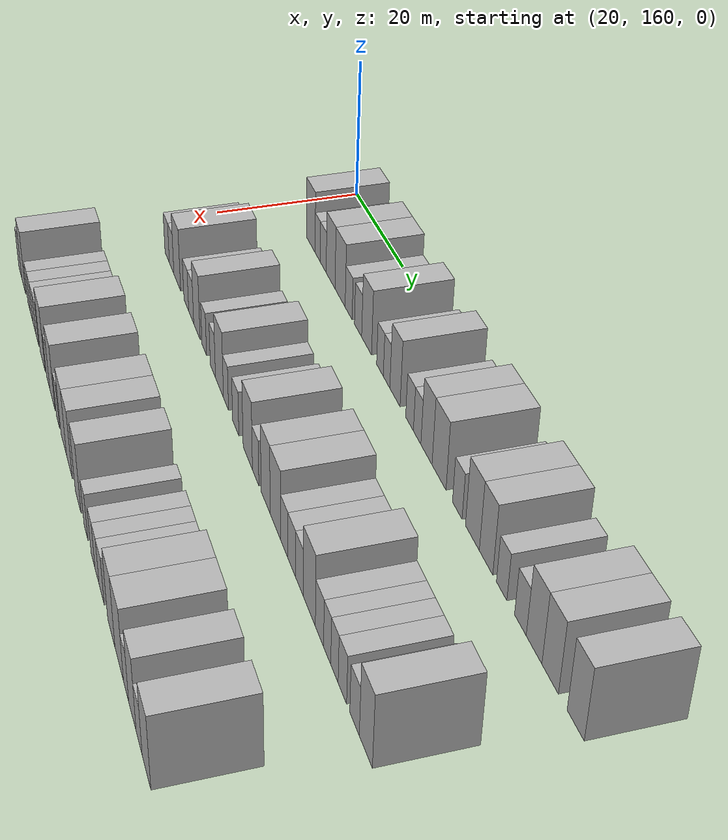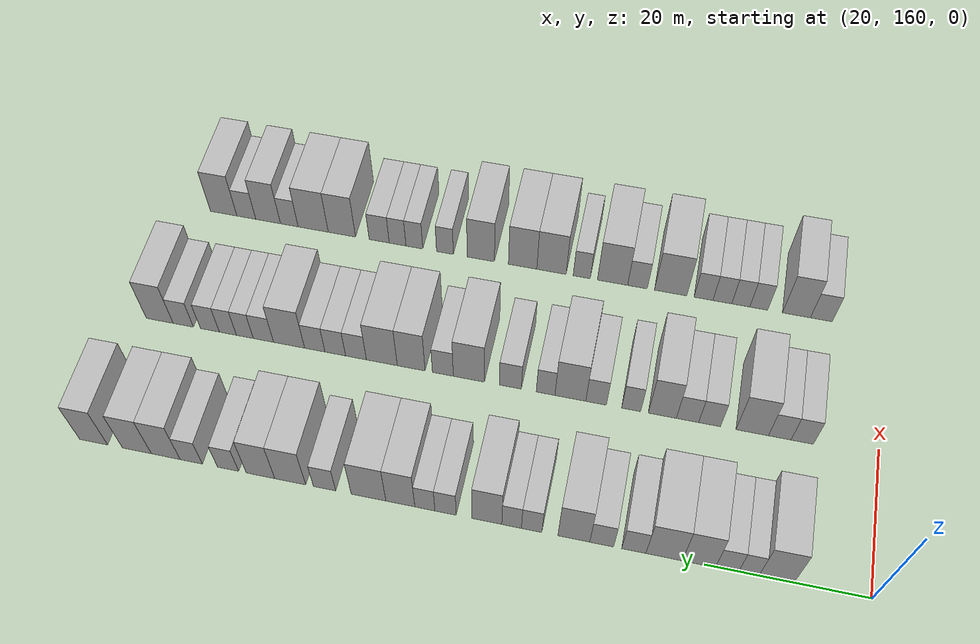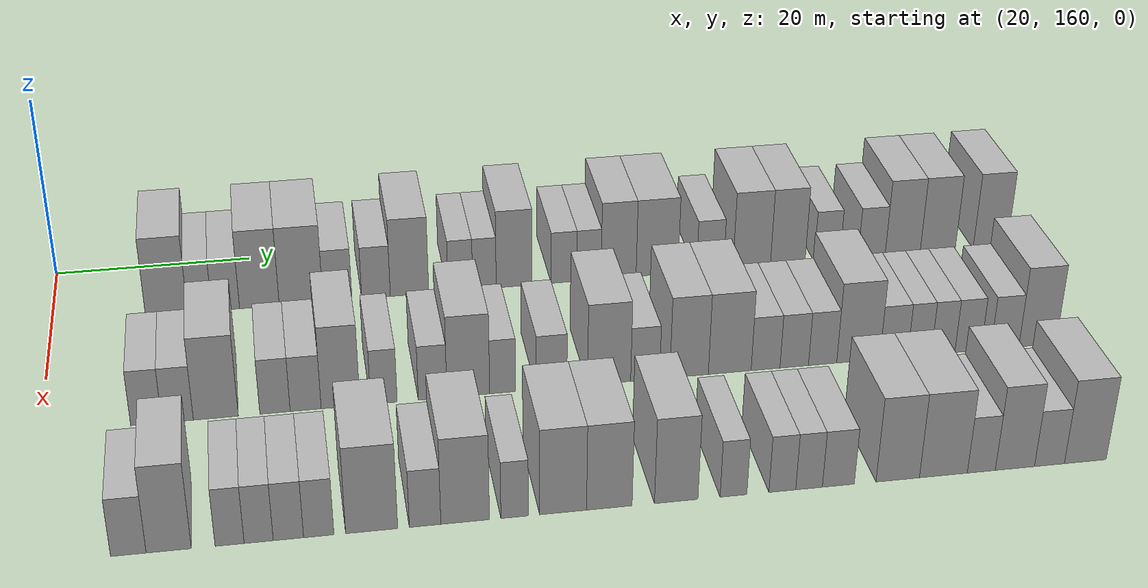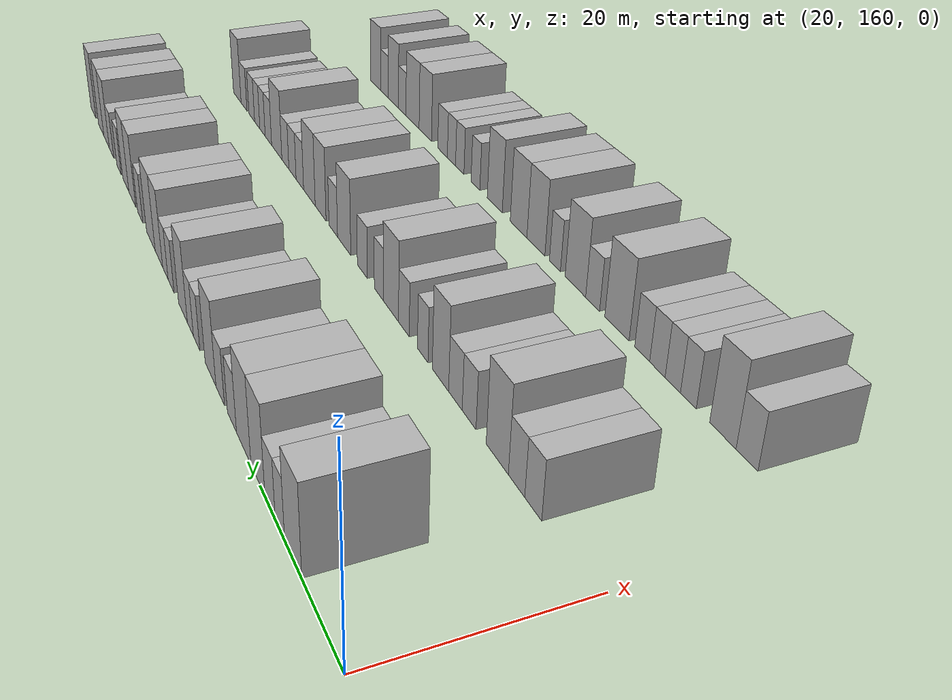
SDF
<sdf version="1.6">
 <world name="default">
  <model name="building_132">
   <static>1</static>
   <pose>25.0000 171.4076 0 0.000000 0.000000 0.000000</pose>
   <link name="link">
    <pose>0 0 4.50 0 0 0</pose>
    <collision name="collision"><geometry><box><size>10.0000 4.2045 9.0000</size></box></geometry></collision>
    <visual name="visual">
     <cast_shadows>0</cast_shadows>
     <geometry><box><size>10.0000 4.2045 9.0000</size></box></geometry>
     <material>
      <script>
       <uri>model://HANNAS_wall/materials/scripts</uri>
       <uri>model://HANNAS_wall/materials/textures</uri>
       <name>vrc/HANNAS_wall</name>
      </script>
     </material>
    </visual>
   </link>
  </model>
  <model name="building_133">
   <static>1</static>
   <pose>25.0000 174.7264 0 0.000000 0.000000 0.000000</pose>
   <link name="link">
    <pose>0 0 3.00 0 0 0</pose>
    <collision name="collision"><geometry><box><size>10.0000 2.4329 6.0000</size></box></geometry></collision>
    <visual name="visual">
     <cast_shadows>0</cast_shadows>
     <geometry><box><size>10.0000 2.4329 6.0000</size></box></geometry>
     <material>
      <script>
       <uri>model://HANNAS_wall/materials/scripts</uri>
       <uri>model://HANNAS_wall/materials/textures</uri>
       <name>vrc/HANNAS_wall</name>
      </script>
     </material>
    </visual>
   </link>
  </model>
  <model name="building_134">
   <static>1</static>
   <pose>25.0000 177.3379 0 0.000000 0.000000 0.000000</pose>
   <link name="link">
    <pose>0 0 3.00 0 0 0</pose>
    <collision name="collision"><geometry><box><size>10.0000 2.7902 6.0000</size></box></geometry></collision>
    <visual name="visual">
     <cast_shadows>0</cast_shadows>
     <geometry><box><size>10.0000 2.7902 6.0000</size></box></geometry>
     <material>
      <script>
       <uri>model://HANNAS_wall/materials/scripts</uri>
       <uri>model://HANNAS_wall/materials/textures</uri>
       <name>vrc/HANNAS_wall</name>
      </script>
     </material>
    </visual>
   </link>
  </model>
  <model name="building_135">
   <static>1</static>
   <pose>25.0000 180.7376 0 0.000000 0.000000 0.000000</pose>
   <link name="link">
    <pose>0 0 4.50 0 0 0</pose>
    <collision name="collision"><geometry><box><size>10.0000 4.0091 9.0000</size></box></geometry></collision>
    <visual name="visual">
     <cast_shadows>0</cast_shadows>
     <geometry><box><size>10.0000 4.0091 9.0000</size></box></geometry>
     <material>
      <script>
       <uri>model://HANNAS_wall/materials/scripts</uri>
       <uri>model://HANNAS_wall/materials/textures</uri>
       <name>vrc/HANNAS_wall</name>
      </script>
     </material>
    </visual>
   </link>
  </model>
  <model name="building_136">
   <static>1</static>
   <pose>25.0000 184.9646 0 0.000000 0.000000 0.000000</pose>
   <link name="link">
    <pose>0 0 4.50 0 0 0</pose>
    <collision name="collision"><geometry><box><size>10.0000 4.4449 9.0000</size></box></geometry></collision>
    <visual name="visual">
     <cast_shadows>0</cast_shadows>
     <geometry><box><size>10.0000 4.4449 9.0000</size></box></geometry>
     <material>
      <script>
       <uri>model://HANNAS_wall/materials/scripts</uri>
       <uri>model://HANNAS_wall/materials/textures</uri>
       <name>vrc/HANNAS_wall</name>
      </script>
     </material>
    </visual>
   </link>
  </model>
  <model name="building_137">
   <static>1</static>
   <pose>25.0000 188.6688 0 0.000000 0.000000 0.000000</pose>
   <link name="link">
    <pose>0 0 3.00 0 0 0</pose>
    <collision name="collision"><geometry><box><size>10.0000 2.9633 6.0000</size></box></geometry></collision>
    <visual name="visual">
     <cast_shadows>0</cast_shadows>
     <geometry><box><size>10.0000 2.9633 6.0000</size></box></geometry>
     <material>
      <script>
       <uri>model://HANNAS_wall/materials/scripts</uri>
       <uri>model://HANNAS_wall/materials/textures</uri>
       <name>vrc/HANNAS_wall</name>
      </script>
     </material>
    </visual>
   </link>
  </model>
  <model name="building_138">
   <static>1</static>
   <pose>25.0000 192.6228 0 0.000000 0.000000 0.000000</pose>
   <link name="link">
    <pose>0 0 3.00 0 0 0</pose>
    <collision name="collision"><geometry><box><size>10.0000 2.9449 6.0000</size></box></geometry></collision>
    <visual name="visual">
     <cast_shadows>0</cast_shadows>
     <geometry><box><size>10.0000 2.9449 6.0000</size></box></geometry>
     <material>
      <script>
       <uri>model://HANNAS_wall/materials/scripts</uri>
       <uri>model://HANNAS_wall/materials/textures</uri>
       <name>vrc/HANNAS_wall</name>
      </script>
     </material>
    </visual>
   </link>
  </model>
  <model name="building_139">
   <static>1</static>
   <pose>25.0000 196.0760 0 0.000000 0.000000 0.000000</pose>
   <link name="link">
    <pose>0 0 4.50 0 0 0</pose>
    <collision name="collision"><geometry><box><size>10.0000 3.9615 9.0000</size></box></geometry></collision>
    <visual name="visual">
     <cast_shadows>0</cast_shadows>
     <geometry><box><size>10.0000 3.9615 9.0000</size></box></geometry>
     <material>
      <script>
       <uri>model://HANNAS_wall/materials/scripts</uri>
       <uri>model://HANNAS_wall/materials/textures</uri>
       <name>vrc/HANNAS_wall</name>
      </script>
     </material>
    </visual>
   </link>
  </model>
  <model name="building_140">
   <static>1</static>
   <pose>25.0000 201.3352 0 0.000000 0.000000 0.000000</pose>
   <link name="link">
    <pose>0 0 3.00 0 0 0</pose>
    <collision name="collision"><geometry><box><size>10.0000 2.5569 6.0000</size></box></geometry></collision>
    <visual name="visual">
     <cast_shadows>0</cast_shadows>
     <geometry><box><size>10.0000 2.5569 6.0000</size></box></geometry>
     <material>
      <script>
       <uri>model://HANNAS_wall/materials/scripts</uri>
       <uri>model://HANNAS_wall/materials/textures</uri>
       <name>vrc/HANNAS_wall</name>
      </script>
     </material>
    </visual>
   </link>
  </model>
  <model name="building_141">
   <static>1</static>
   <pose>25.0000 203.8421 0 0.000000 0.000000 0.000000</pose>
   <link name="link">
    <pose>0 0 3.00 0 0 0</pose>
    <collision name="collision"><geometry><box><size>10.0000 2.4568 6.0000</size></box></geometry></collision>
    <visual name="visual">
     <cast_shadows>0</cast_shadows>
     <geometry><box><size>10.0000 2.4568 6.0000</size></box></geometry>
     <material>
      <script>
       <uri>model://HANNAS_wall/materials/scripts</uri>
       <uri>model://HANNAS_wall/materials/textures</uri>
       <name>vrc/HANNAS_wall</name>
      </script>
     </material>
    </visual>
   </link>
  </model>
  <model name="building_142">
   <static>1</static>
   <pose>25.0000 206.9484 0 0.000000 0.000000 0.000000</pose>
   <link name="link">
    <pose>0 0 4.50 0 0 0</pose>
    <collision name="collision"><geometry><box><size>10.0000 3.7558 9.0000</size></box></geometry></collision>
    <visual name="visual">
     <cast_shadows>0</cast_shadows>
     <geometry><box><size>10.0000 3.7558 9.0000</size></box></geometry>
     <material>
      <script>
       <uri>model://HANNAS_wall/materials/scripts</uri>
       <uri>model://HANNAS_wall/materials/textures</uri>
       <name>vrc/HANNAS_wall</name>
      </script>
     </material>
    </visual>
   </link>
  </model>
  <model name="building_143">
   <static>1</static>
   <pose>25.0000 212.1789 0 0.000000 0.000000 0.000000</pose>
   <link name="link">
    <pose>0 0 3.00 0 0 0</pose>
    <collision name="collision"><geometry><box><size>10.0000 2.7054 6.0000</size></box></geometry></collision>
    <visual name="visual">
     <cast_shadows>0</cast_shadows>
     <geometry><box><size>10.0000 2.7054 6.0000</size></box></geometry>
     <material>
      <script>
       <uri>model://HANNAS_wall/materials/scripts</uri>
       <uri>model://HANNAS_wall/materials/textures</uri>
       <name>vrc/HANNAS_wall</name>
      </script>
     </material>
    </visual>
   </link>
  </model>
  <model name="building_144">
   <static>1</static>
   <pose>25.0000 214.8105 0 0.000000 0.000000 0.000000</pose>
   <link name="link">
    <pose>0 0 3.00 0 0 0</pose>
    <collision name="collision"><geometry><box><size>10.0000 2.5578 6.0000</size></box></geometry></collision>
    <visual name="visual">
     <cast_shadows>0</cast_shadows>
     <geometry><box><size>10.0000 2.5578 6.0000</size></box></geometry>
     <material>
      <script>
       <uri>model://HANNAS_wall/materials/scripts</uri>
       <uri>model://HANNAS_wall/materials/textures</uri>
       <name>vrc/HANNAS_wall</name>
      </script>
     </material>
    </visual>
   </link>
  </model>
  <model name="building_145">
   <static>1</static>
   <pose>25.0000 217.9452 0 0.000000 0.000000 0.000000</pose>
   <link name="link">
    <pose>0 0 4.50 0 0 0</pose>
    <collision name="collision"><geometry><box><size>10.0000 3.7116 9.0000</size></box></geometry></collision>
    <visual name="visual">
     <cast_shadows>0</cast_shadows>
     <geometry><box><size>10.0000 3.7116 9.0000</size></box></geometry>
     <material>
      <script>
       <uri>model://HANNAS_wall/materials/scripts</uri>
       <uri>model://HANNAS_wall/materials/textures</uri>
       <name>vrc/HANNAS_wall</name>
      </script>
     </material>
    </visual>
   </link>
  </model>
  <model name="building_146">
   <static>1</static>
   <pose>25.0000 222.0358 0 0.000000 0.000000 0.000000</pose>
   <link name="link">
    <pose>0 0 4.50 0 0 0</pose>
    <collision name="collision"><geometry><box><size>10.0000 4.4697 9.0000</size></box></geometry></collision>
    <visual name="visual">
     <cast_shadows>0</cast_shadows>
     <geometry><box><size>10.0000 4.4697 9.0000</size></box></geometry>
     <material>
      <script>
       <uri>model://HANNAS_wall/materials/scripts</uri>
       <uri>model://HANNAS_wall/materials/textures</uri>
       <name>vrc/HANNAS_wall</name>
      </script>
     </material>
    </visual>
   </link>
  </model>
  <model name="building_147">
   <static>1</static>
   <pose>25.0000 227.7238 0 0.000000 0.000000 0.000000</pose>
   <link name="link">
    <pose>0 0 3.00 0 0 0</pose>
    <collision name="collision"><geometry><box><size>10.0000 2.9061 6.0000</size></box></geometry></collision>
    <visual name="visual">
     <cast_shadows>0</cast_shadows>
     <geometry><box><size>10.0000 2.9061 6.0000</size></box></geometry>
     <material>
      <script>
       <uri>model://HANNAS_wall/materials/scripts</uri>
       <uri>model://HANNAS_wall/materials/textures</uri>
       <name>vrc/HANNAS_wall</name>
      </script>
     </material>
    </visual>
   </link>
  </model>
  <model name="building_148">
   <static>1</static>
   <pose>25.0000 232.2005 0 0.000000 0.000000 0.000000</pose>
   <link name="link">
    <pose>0 0 4.50 0 0 0</pose>
    <collision name="collision"><geometry><box><size>10.0000 4.0473 9.0000</size></box></geometry></collision>
    <visual name="visual">
     <cast_shadows>0</cast_shadows>
     <geometry><box><size>10.0000 4.0473 9.0000</size></box></geometry>
     <material>
      <script>
       <uri>model://HANNAS_wall/materials/scripts</uri>
       <uri>model://HANNAS_wall/materials/textures</uri>
       <name>vrc/HANNAS_wall</name>
      </script>
     </material>
    </visual>
   </link>
  </model>
  <model name="building_149">
   <static>1</static>
   <pose>25.0000 236.1040 0 0.000000 0.000000 0.000000</pose>
   <link name="link">
    <pose>0 0 4.50 0 0 0</pose>
    <collision name="collision"><geometry><box><size>10.0000 3.7598 9.0000</size></box></geometry></collision>
    <visual name="visual">
     <cast_shadows>0</cast_shadows>
     <geometry><box><size>10.0000 3.7598 9.0000</size></box></geometry>
     <material>
      <script>
       <uri>model://HANNAS_wall/materials/scripts</uri>
       <uri>model://HANNAS_wall/materials/textures</uri>
       <name>vrc/HANNAS_wall</name>
      </script>
     </material>
    </visual>
   </link>
  </model>
  <model name="building_150">
   <static>1</static>
   <pose>25.0000 240.3848 0 0.000000 0.000000 0.000000</pose>
   <link name="link">
    <pose>0 0 3.00 0 0 0</pose>
    <collision name="collision"><geometry><box><size>10.0000 2.8017 6.0000</size></box></geometry></collision>
    <visual name="visual">
     <cast_shadows>0</cast_shadows>
     <geometry><box><size>10.0000 2.8017 6.0000</size></box></geometry>
     <material>
      <script>
       <uri>model://HANNAS_wall/materials/scripts</uri>
       <uri>model://HANNAS_wall/materials/textures</uri>
       <name>vrc/HANNAS_wall</name>
      </script>
     </material>
    </visual>
   </link>
  </model>
  <model name="building_151">
   <static>1</static>
   <pose>25.0000 245.2728 0 0.000000 0.000000 0.000000</pose>
   <link name="link">
    <pose>0 0 3.00 0 0 0</pose>
    <collision name="collision"><geometry><box><size>10.0000 2.9743 6.0000</size></box></geometry></collision>
    <visual name="visual">
     <cast_shadows>0</cast_shadows>
     <geometry><box><size>10.0000 2.9743 6.0000</size></box></geometry>
     <material>
      <script>
       <uri>model://HANNAS_wall/materials/scripts</uri>
       <uri>model://HANNAS_wall/materials/textures</uri>
       <name>vrc/HANNAS_wall</name>
      </script>
     </material>
    </visual>
   </link>
  </model>
  <model name="building_152">
   <static>1</static>
   <pose>25.0000 248.6910 0 0.000000 0.000000 0.000000</pose>
   <link name="link">
    <pose>0 0 4.50 0 0 0</pose>
    <collision name="collision"><geometry><box><size>10.0000 3.8621 9.0000</size></box></geometry></collision>
    <visual name="visual">
     <cast_shadows>0</cast_shadows>
     <geometry><box><size>10.0000 3.8621 9.0000</size></box></geometry>
     <material>
      <script>
       <uri>model://HANNAS_wall/materials/scripts</uri>
       <uri>model://HANNAS_wall/materials/textures</uri>
       <name>vrc/HANNAS_wall</name>
      </script>
     </material>
    </visual>
   </link>
  </model>
  <model name="building_153">
   <static>1</static>
   <pose>25.0000 252.5700 0 0.000000 0.000000 0.000000</pose>
   <link name="link">
    <pose>0 0 4.50 0 0 0</pose>
    <collision name="collision"><geometry><box><size>10.0000 3.8959 9.0000</size></box></geometry></collision>
    <visual name="visual">
     <cast_shadows>0</cast_shadows>
     <geometry><box><size>10.0000 3.8959 9.0000</size></box></geometry>
     <material>
      <script>
       <uri>model://HANNAS_wall/materials/scripts</uri>
       <uri>model://HANNAS_wall/materials/textures</uri>
       <name>vrc/HANNAS_wall</name>
      </script>
     </material>
    </visual>
   </link>
  </model>
  <model name="building_154">
   <static>1</static>
   <pose>25.0000 258.4167 0 0.000000 0.000000 0.000000</pose>
   <link name="link">
    <pose>0 0 4.50 0 0 0</pose>
    <collision name="collision"><geometry><box><size>10.0000 3.7974 9.0000</size></box></geometry></collision>
    <visual name="visual">
     <cast_shadows>0</cast_shadows>
     <geometry><box><size>10.0000 3.7974 9.0000</size></box></geometry>
     <material>
      <script>
       <uri>model://HANNAS_wall/materials/scripts</uri>
       <uri>model://HANNAS_wall/materials/textures</uri>
       <name>vrc/HANNAS_wall</name>
      </script>
     </material>
    </visual>
   </link>
  </model>
  <model name="building_306">
   <static>1</static>
   <pose>44.0000 169.6884 0 0.000000 0.000000 0.000000</pose>
   <link name="link">
    <pose>0 0 3.00 0 0 0</pose>
    <collision name="collision"><geometry><box><size>10.0000 2.8578 6.0000</size></box></geometry></collision>
    <visual name="visual">
     <cast_shadows>0</cast_shadows>
     <geometry><box><size>10.0000 2.8578 6.0000</size></box></geometry>
     <material>
      <script>
       <uri>model://HANNAS_wall/materials/scripts</uri>
       <uri>model://HANNAS_wall/materials/textures</uri>
       <name>vrc/HANNAS_wall</name>
      </script>
     </material>
    </visual>
   </link>
  </model>
  <model name="building_307">
   <static>1</static>
   <pose>44.0000 172.5629 0 0.000000 0.000000 0.000000</pose>
   <link name="link">
    <pose>0 0 3.00 0 0 0</pose>
    <collision name="collision"><geometry><box><size>10.0000 2.8912 6.0000</size></box></geometry></collision>
    <visual name="visual">
     <cast_shadows>0</cast_shadows>
     <geometry><box><size>10.0000 2.8912 6.0000</size></box></geometry>
     <material>
      <script>
       <uri>model://HANNAS_wall/materials/scripts</uri>
       <uri>model://HANNAS_wall/materials/textures</uri>
       <name>vrc/HANNAS_wall</name>
      </script>
     </material>
    </visual>
   </link>
  </model>
  <model name="building_308">
   <static>1</static>
   <pose>44.0000 176.0875 0 0.000000 0.000000 0.000000</pose>
   <link name="link">
    <pose>0 0 4.50 0 0 0</pose>
    <collision name="collision"><geometry><box><size>10.0000 4.1579 9.0000</size></box></geometry></collision>
    <visual name="visual">
     <cast_shadows>0</cast_shadows>
     <geometry><box><size>10.0000 4.1579 9.0000</size></box></geometry>
     <material>
      <script>
       <uri>model://HANNAS_wall/materials/scripts</uri>
       <uri>model://HANNAS_wall/materials/textures</uri>
       <name>vrc/HANNAS_wall</name>
      </script>
     </material>
    </visual>
   </link>
  </model>
  <model name="building_309">
   <static>1</static>
   <pose>44.0000 181.5788 0 0.000000 0.000000 0.000000</pose>
   <link name="link">
    <pose>0 0 3.00 0 0 0</pose>
    <collision name="collision"><geometry><box><size>10.0000 2.8247 6.0000</size></box></geometry></collision>
    <visual name="visual">
     <cast_shadows>0</cast_shadows>
     <geometry><box><size>10.0000 2.8247 6.0000</size></box></geometry>
     <material>
      <script>
       <uri>model://HANNAS_wall/materials/scripts</uri>
       <uri>model://HANNAS_wall/materials/textures</uri>
       <name>vrc/HANNAS_wall</name>
      </script>
     </material>
    </visual>
   </link>
  </model>
  <model name="building_310">
   <static>1</static>
   <pose>44.0000 184.4410 0 0.000000 0.000000 0.000000</pose>
   <link name="link">
    <pose>0 0 3.00 0 0 0</pose>
    <collision name="collision"><geometry><box><size>10.0000 2.8997 6.0000</size></box></geometry></collision>
    <visual name="visual">
     <cast_shadows>0</cast_shadows>
     <geometry><box><size>10.0000 2.8997 6.0000</size></box></geometry>
     <material>
      <script>
       <uri>model://HANNAS_wall/materials/scripts</uri>
       <uri>model://HANNAS_wall/materials/textures</uri>
       <name>vrc/HANNAS_wall</name>
      </script>
     </material>
    </visual>
   </link>
  </model>
  <model name="building_311">
   <static>1</static>
   <pose>44.0000 187.7177 0 0.000000 0.000000 0.000000</pose>
   <link name="link">
    <pose>0 0 4.50 0 0 0</pose>
    <collision name="collision"><geometry><box><size>10.0000 3.6538 9.0000</size></box></geometry></collision>
    <visual name="visual">
     <cast_shadows>0</cast_shadows>
     <geometry><box><size>10.0000 3.6538 9.0000</size></box></geometry>
     <material>
      <script>
       <uri>model://HANNAS_wall/materials/scripts</uri>
       <uri>model://HANNAS_wall/materials/textures</uri>
       <name>vrc/HANNAS_wall</name>
      </script>
     </material>
    </visual>
   </link>
  </model>
  <model name="building_312">
   <static>1</static>
   <pose>44.0000 191.7992 0 0.000000 0.000000 0.000000</pose>
   <link name="link">
    <pose>0 0 3.00 0 0 0</pose>
    <collision name="collision"><geometry><box><size>10.0000 2.5092 6.0000</size></box></geometry></collision>
    <visual name="visual">
     <cast_shadows>0</cast_shadows>
     <geometry><box><size>10.0000 2.5092 6.0000</size></box></geometry>
     <material>
      <script>
       <uri>model://HANNAS_wall/materials/scripts</uri>
       <uri>model://HANNAS_wall/materials/textures</uri>
       <name>vrc/HANNAS_wall</name>
      </script>
     </material>
    </visual>
   </link>
  </model>
  <model name="building_313">
   <static>1</static>
   <pose>44.0000 196.4170 0 0.000000 0.000000 0.000000</pose>
   <link name="link">
    <pose>0 0 3.00 0 0 0</pose>
    <collision name="collision"><geometry><box><size>10.0000 2.7265 6.0000</size></box></geometry></collision>
    <visual name="visual">
     <cast_shadows>0</cast_shadows>
     <geometry><box><size>10.0000 2.7265 6.0000</size></box></geometry>
     <material>
      <script>
       <uri>model://HANNAS_wall/materials/scripts</uri>
       <uri>model://HANNAS_wall/materials/textures</uri>
       <name>vrc/HANNAS_wall</name>
      </script>
     </material>
    </visual>
   </link>
  </model>
  <model name="building_314">
   <static>1</static>
   <pose>44.0000 199.8236 0 0.000000 0.000000 0.000000</pose>
   <link name="link">
    <pose>0 0 4.50 0 0 0</pose>
    <collision name="collision"><geometry><box><size>10.0000 4.0865 9.0000</size></box></geometry></collision>
    <visual name="visual">
     <cast_shadows>0</cast_shadows>
     <geometry><box><size>10.0000 4.0865 9.0000</size></box></geometry>
     <material>
      <script>
       <uri>model://HANNAS_wall/materials/scripts</uri>
       <uri>model://HANNAS_wall/materials/textures</uri>
       <name>vrc/HANNAS_wall</name>
      </script>
     </material>
    </visual>
   </link>
  </model>
  <model name="building_315">
   <static>1</static>
   <pose>44.0000 203.1090 0 0.000000 0.000000 0.000000</pose>
   <link name="link">
    <pose>0 0 3.00 0 0 0</pose>
    <collision name="collision"><geometry><box><size>10.0000 2.4844 6.0000</size></box></geometry></collision>
    <visual name="visual">
     <cast_shadows>0</cast_shadows>
     <geometry><box><size>10.0000 2.4844 6.0000</size></box></geometry>
     <material>
      <script>
       <uri>model://HANNAS_wall/materials/scripts</uri>
       <uri>model://HANNAS_wall/materials/textures</uri>
       <name>vrc/HANNAS_wall</name>
      </script>
     </material>
    </visual>
   </link>
  </model>
  <model name="building_316">
   <static>1</static>
   <pose>44.0000 207.8300 0 0.000000 0.000000 0.000000</pose>
   <link name="link">
    <pose>0 0 3.00 0 0 0</pose>
    <collision name="collision"><geometry><box><size>10.0000 2.9574 6.0000</size></box></geometry></collision>
    <visual name="visual">
     <cast_shadows>0</cast_shadows>
     <geometry><box><size>10.0000 2.9574 6.0000</size></box></geometry>
     <material>
      <script>
       <uri>model://HANNAS_wall/materials/scripts</uri>
       <uri>model://HANNAS_wall/materials/textures</uri>
       <name>vrc/HANNAS_wall</name>
      </script>
     </material>
    </visual>
   </link>
  </model>
  <model name="building_317">
   <static>1</static>
   <pose>44.0000 213.4087 0 0.000000 0.000000 0.000000</pose>
   <link name="link">
    <pose>0 0 4.50 0 0 0</pose>
    <collision name="collision"><geometry><box><size>10.0000 4.1999 9.0000</size></box></geometry></collision>
    <visual name="visual">
     <cast_shadows>0</cast_shadows>
     <geometry><box><size>10.0000 4.1999 9.0000</size></box></geometry>
     <material>
      <script>
       <uri>model://HANNAS_wall/materials/scripts</uri>
       <uri>model://HANNAS_wall/materials/textures</uri>
       <name>vrc/HANNAS_wall</name>
      </script>
     </material>
    </visual>
   </link>
  </model>
  <model name="building_318">
   <static>1</static>
   <pose>44.0000 216.9254 0 0.000000 0.000000 0.000000</pose>
   <link name="link">
    <pose>0 0 3.00 0 0 0</pose>
    <collision name="collision"><geometry><box><size>10.0000 2.8336 6.0000</size></box></geometry></collision>
    <visual name="visual">
     <cast_shadows>0</cast_shadows>
     <geometry><box><size>10.0000 2.8336 6.0000</size></box></geometry>
     <material>
      <script>
       <uri>model://HANNAS_wall/materials/scripts</uri>
       <uri>model://HANNAS_wall/materials/textures</uri>
       <name>vrc/HANNAS_wall</name>
      </script>
     </material>
    </visual>
   </link>
  </model>
  <model name="building_319">
   <static>1</static>
   <pose>44.0000 221.2434 0 0.000000 0.000000 0.000000</pose>
   <link name="link">
    <pose>0 0 4.50 0 0 0</pose>
    <collision name="collision"><geometry><box><size>10.0000 3.8024 9.0000</size></box></geometry></collision>
    <visual name="visual">
     <cast_shadows>0</cast_shadows>
     <geometry><box><size>10.0000 3.8024 9.0000</size></box></geometry>
     <material>
      <script>
       <uri>model://HANNAS_wall/materials/scripts</uri>
       <uri>model://HANNAS_wall/materials/textures</uri>
       <name>vrc/HANNAS_wall</name>
      </script>
     </material>
    </visual>
   </link>
  </model>
  <model name="building_320">
   <static>1</static>
   <pose>44.0000 225.2659 0 0.000000 0.000000 0.000000</pose>
   <link name="link">
    <pose>0 0 4.50 0 0 0</pose>
    <collision name="collision"><geometry><box><size>10.0000 4.2427 9.0000</size></box></geometry></collision>
    <visual name="visual">
     <cast_shadows>0</cast_shadows>
     <geometry><box><size>10.0000 4.2427 9.0000</size></box></geometry>
     <material>
      <script>
       <uri>model://HANNAS_wall/materials/scripts</uri>
       <uri>model://HANNAS_wall/materials/textures</uri>
       <name>vrc/HANNAS_wall</name>
      </script>
     </material>
    </visual>
   </link>
  </model>
  <model name="building_321">
   <static>1</static>
   <pose>44.0000 228.8219 0 0.000000 0.000000 0.000000</pose>
   <link name="link">
    <pose>0 0 3.00 0 0 0</pose>
    <collision name="collision"><geometry><box><size>10.0000 2.8693 6.0000</size></box></geometry></collision>
    <visual name="visual">
     <cast_shadows>0</cast_shadows>
     <geometry><box><size>10.0000 2.8693 6.0000</size></box></geometry>
     <material>
      <script>
       <uri>model://HANNAS_wall/materials/scripts</uri>
       <uri>model://HANNAS_wall/materials/textures</uri>
       <name>vrc/HANNAS_wall</name>
      </script>
     </material>
    </visual>
   </link>
  </model>
  <model name="building_322">
   <static>1</static>
   <pose>44.0000 231.6822 0 0.000000 0.000000 0.000000</pose>
   <link name="link">
    <pose>0 0 3.00 0 0 0</pose>
    <collision name="collision"><geometry><box><size>10.0000 2.8514 6.0000</size></box></geometry></collision>
    <visual name="visual">
     <cast_shadows>0</cast_shadows>
     <geometry><box><size>10.0000 2.8514 6.0000</size></box></geometry>
     <material>
      <script>
       <uri>model://HANNAS_wall/materials/scripts</uri>
       <uri>model://HANNAS_wall/materials/textures</uri>
       <name>vrc/HANNAS_wall</name>
      </script>
     </material>
    </visual>
   </link>
  </model>
  <model name="building_323">
   <static>1</static>
   <pose>44.0000 234.5244 0 0.000000 0.000000 0.000000</pose>
   <link name="link">
    <pose>0 0 3.00 0 0 0</pose>
    <collision name="collision"><geometry><box><size>10.0000 2.8329 6.0000</size></box></geometry></collision>
    <visual name="visual">
     <cast_shadows>0</cast_shadows>
     <geometry><box><size>10.0000 2.8329 6.0000</size></box></geometry>
     <material>
      <script>
       <uri>model://HANNAS_wall/materials/scripts</uri>
       <uri>model://HANNAS_wall/materials/textures</uri>
       <name>vrc/HANNAS_wall</name>
      </script>
     </material>
    </visual>
   </link>
  </model>
  <model name="building_324">
   <static>1</static>
   <pose>44.0000 238.1102 0 0.000000 0.000000 0.000000</pose>
   <link name="link">
    <pose>0 0 4.50 0 0 0</pose>
    <collision name="collision"><geometry><box><size>10.0000 4.3388 9.0000</size></box></geometry></collision>
    <visual name="visual">
     <cast_shadows>0</cast_shadows>
     <geometry><box><size>10.0000 4.3388 9.0000</size></box></geometry>
     <material>
      <script>
       <uri>model://HANNAS_wall/materials/scripts</uri>
       <uri>model://HANNAS_wall/materials/textures</uri>
       <name>vrc/HANNAS_wall</name>
      </script>
     </material>
    </visual>
   </link>
  </model>
  <model name="building_325">
   <static>1</static>
   <pose>44.0000 241.6957 0 0.000000 0.000000 0.000000</pose>
   <link name="link">
    <pose>0 0 3.00 0 0 0</pose>
    <collision name="collision"><geometry><box><size>10.0000 2.8322 6.0000</size></box></geometry></collision>
    <visual name="visual">
     <cast_shadows>0</cast_shadows>
     <geometry><box><size>10.0000 2.8322 6.0000</size></box></geometry>
     <material>
      <script>
       <uri>model://HANNAS_wall/materials/scripts</uri>
       <uri>model://HANNAS_wall/materials/textures</uri>
       <name>vrc/HANNAS_wall</name>
      </script>
     </material>
    </visual>
   </link>
  </model>
  <model name="building_326">
   <static>1</static>
   <pose>44.0000 244.3120 0 0.000000 0.000000 0.000000</pose>
   <link name="link">
    <pose>0 0 3.00 0 0 0</pose>
    <collision name="collision"><geometry><box><size>10.0000 2.4003 6.0000</size></box></geometry></collision>
    <visual name="visual">
     <cast_shadows>0</cast_shadows>
     <geometry><box><size>10.0000 2.4003 6.0000</size></box></geometry>
     <material>
      <script>
       <uri>model://HANNAS_wall/materials/scripts</uri>
       <uri>model://HANNAS_wall/materials/textures</uri>
       <name>vrc/HANNAS_wall</name>
      </script>
     </material>
    </visual>
   </link>
  </model>
  <model name="building_327">
   <static>1</static>
   <pose>44.0000 246.7188 0 0.000000 0.000000 0.000000</pose>
   <link name="link">
    <pose>0 0 3.00 0 0 0</pose>
    <collision name="collision"><geometry><box><size>10.0000 2.4133 6.0000</size></box></geometry></collision>
    <visual name="visual">
     <cast_shadows>0</cast_shadows>
     <geometry><box><size>10.0000 2.4133 6.0000</size></box></geometry>
     <material>
      <script>
       <uri>model://HANNAS_wall/materials/scripts</uri>
       <uri>model://HANNAS_wall/materials/textures</uri>
       <name>vrc/HANNAS_wall</name>
      </script>
     </material>
    </visual>
   </link>
  </model>
  <model name="building_328">
   <static>1</static>
   <pose>44.0000 249.2634 0 0.000000 0.000000 0.000000</pose>
   <link name="link">
    <pose>0 0 3.00 0 0 0</pose>
    <collision name="collision"><geometry><box><size>10.0000 2.6759 6.0000</size></box></geometry></collision>
    <visual name="visual">
     <cast_shadows>0</cast_shadows>
     <geometry><box><size>10.0000 2.6759 6.0000</size></box></geometry>
     <material>
      <script>
       <uri>model://HANNAS_wall/materials/scripts</uri>
       <uri>model://HANNAS_wall/materials/textures</uri>
       <name>vrc/HANNAS_wall</name>
      </script>
     </material>
    </visual>
   </link>
  </model>
  <model name="building_329">
   <static>1</static>
   <pose>44.0000 253.0477 0 0.000000 0.000000 0.000000</pose>
   <link name="link">
    <pose>0 0 3.00 0 0 0</pose>
    <collision name="collision"><geometry><box><size>10.0000 2.8926 6.0000</size></box></geometry></collision>
    <visual name="visual">
     <cast_shadows>0</cast_shadows>
     <geometry><box><size>10.0000 2.8926 6.0000</size></box></geometry>
     <material>
      <script>
       <uri>model://HANNAS_wall/materials/scripts</uri>
       <uri>model://HANNAS_wall/materials/textures</uri>
       <name>vrc/HANNAS_wall</name>
      </script>
     </material>
    </visual>
   </link>
  </model>
  <model name="building_330">
   <static>1</static>
   <pose>44.0000 256.4158 0 0.000000 0.000000 0.000000</pose>
   <link name="link">
    <pose>0 0 4.50 0 0 0</pose>
    <collision name="collision"><geometry><box><size>10.0000 3.8436 9.0000</size></box></geometry></collision>
    <visual name="visual">
     <cast_shadows>0</cast_shadows>
     <geometry><box><size>10.0000 3.8436 9.0000</size></box></geometry>
     <material>
      <script>
       <uri>model://HANNAS_wall/materials/scripts</uri>
       <uri>model://HANNAS_wall/materials/textures</uri>
       <name>vrc/HANNAS_wall</name>
      </script>
     </material>
    </visual>
   </link>
  </model>
  <model name="building_494">
   <static>1</static>
   <pose>63.0000 168.4932 0 0.000000 0.000000 0.000000</pose>
   <link name="link">
    <pose>0 0 3.00 0 0 0</pose>
    <collision name="collision"><geometry><box><size>10.0000 2.9674 6.0000</size></box></geometry></collision>
    <visual name="visual">
     <cast_shadows>0</cast_shadows>
     <geometry><box><size>10.0000 2.9674 6.0000</size></box></geometry>
     <material>
      <script>
       <uri>model://HANNAS_wall/materials/scripts</uri>
       <uri>model://HANNAS_wall/materials/textures</uri>
       <name>vrc/HANNAS_wall</name>
      </script>
     </material>
    </visual>
   </link>
  </model>
  <model name="building_495">
   <static>1</static>
   <pose>63.0000 171.8713 0 0.000000 0.000000 0.000000</pose>
   <link name="link">
    <pose>0 0 4.50 0 0 0</pose>
    <collision name="collision"><geometry><box><size>10.0000 3.7887 9.0000</size></box></geometry></collision>
    <visual name="visual">
     <cast_shadows>0</cast_shadows>
     <geometry><box><size>10.0000 3.7887 9.0000</size></box></geometry>
     <material>
      <script>
       <uri>model://HANNAS_wall/materials/scripts</uri>
       <uri>model://HANNAS_wall/materials/textures</uri>
       <name>vrc/HANNAS_wall</name>
      </script>
     </material>
    </visual>
   </link>
  </model>
  <model name="building_496">
   <static>1</static>
   <pose>63.0000 176.9920 0 0.000000 0.000000 0.000000</pose>
   <link name="link">
    <pose>0 0 3.00 0 0 0</pose>
    <collision name="collision"><geometry><box><size>10.0000 2.4528 6.0000</size></box></geometry></collision>
    <visual name="visual">
     <cast_shadows>0</cast_shadows>
     <geometry><box><size>10.0000 2.4528 6.0000</size></box></geometry>
     <material>
      <script>
       <uri>model://HANNAS_wall/materials/scripts</uri>
       <uri>model://HANNAS_wall/materials/textures</uri>
       <name>vrc/HANNAS_wall</name>
      </script>
     </material>
    </visual>
   </link>
  </model>
  <model name="building_497">
   <static>1</static>
   <pose>63.0000 179.4535 0 0.000000 0.000000 0.000000</pose>
   <link name="link">
    <pose>0 0 3.00 0 0 0</pose>
    <collision name="collision"><geometry><box><size>10.0000 2.4700 6.0000</size></box></geometry></collision>
    <visual name="visual">
     <cast_shadows>0</cast_shadows>
     <geometry><box><size>10.0000 2.4700 6.0000</size></box></geometry>
     <material>
      <script>
       <uri>model://HANNAS_wall/materials/scripts</uri>
       <uri>model://HANNAS_wall/materials/textures</uri>
       <name>vrc/HANNAS_wall</name>
      </script>
     </material>
    </visual>
   </link>
  </model>
  <model name="building_498">
   <static>1</static>
   <pose>63.0000 181.9796 0 0.000000 0.000000 0.000000</pose>
   <link name="link">
    <pose>0 0 3.00 0 0 0</pose>
    <collision name="collision"><geometry><box><size>10.0000 2.5823 6.0000</size></box></geometry></collision>
    <visual name="visual">
     <cast_shadows>0</cast_shadows>
     <geometry><box><size>10.0000 2.5823 6.0000</size></box></geometry>
     <material>
      <script>
       <uri>model://HANNAS_wall/materials/scripts</uri>
       <uri>model://HANNAS_wall/materials/textures</uri>
       <name>vrc/HANNAS_wall</name>
      </script>
     </material>
    </visual>
   </link>
  </model>
  <model name="building_499">
   <static>1</static>
   <pose>63.0000 184.5679 0 0.000000 0.000000 0.000000</pose>
   <link name="link">
    <pose>0 0 3.00 0 0 0</pose>
    <collision name="collision"><geometry><box><size>10.0000 2.5943 6.0000</size></box></geometry></collision>
    <visual name="visual">
     <cast_shadows>0</cast_shadows>
     <geometry><box><size>10.0000 2.5943 6.0000</size></box></geometry>
     <material>
      <script>
       <uri>model://HANNAS_wall/materials/scripts</uri>
       <uri>model://HANNAS_wall/materials/textures</uri>
       <name>vrc/HANNAS_wall</name>
      </script>
     </material>
    </visual>
   </link>
  </model>
  <model name="building_500">
   <static>1</static>
   <pose>63.0000 189.1086 0 0.000000 0.000000 0.000000</pose>
   <link name="link">
    <pose>0 0 4.50 0 0 0</pose>
    <collision name="collision"><geometry><box><size>10.0000 4.4871 9.0000</size></box></geometry></collision>
    <visual name="visual">
     <cast_shadows>0</cast_shadows>
     <geometry><box><size>10.0000 4.4871 9.0000</size></box></geometry>
     <material>
      <script>
       <uri>model://HANNAS_wall/materials/scripts</uri>
       <uri>model://HANNAS_wall/materials/textures</uri>
       <name>vrc/HANNAS_wall</name>
      </script>
     </material>
    </visual>
   </link>
  </model>
  <model name="building_501">
   <static>1</static>
   <pose>63.0000 193.7209 0 0.000000 0.000000 0.000000</pose>
   <link name="link">
    <pose>0 0 3.00 0 0 0</pose>
    <collision name="collision"><geometry><box><size>10.0000 2.7375 6.0000</size></box></geometry></collision>
    <visual name="visual">
     <cast_shadows>0</cast_shadows>
     <geometry><box><size>10.0000 2.7375 6.0000</size></box></geometry>
     <material>
      <script>
       <uri>model://HANNAS_wall/materials/scripts</uri>
       <uri>model://HANNAS_wall/materials/textures</uri>
       <name>vrc/HANNAS_wall</name>
      </script>
     </material>
    </visual>
   </link>
  </model>
  <model name="building_502">
   <static>1</static>
   <pose>63.0000 197.2078 0 0.000000 0.000000 0.000000</pose>
   <link name="link">
    <pose>0 0 4.50 0 0 0</pose>
    <collision name="collision"><geometry><box><size>10.0000 4.2364 9.0000</size></box></geometry></collision>
    <visual name="visual">
     <cast_shadows>0</cast_shadows>
     <geometry><box><size>10.0000 4.2364 9.0000</size></box></geometry>
     <material>
      <script>
       <uri>model://HANNAS_wall/materials/scripts</uri>
       <uri>model://HANNAS_wall/materials/textures</uri>
       <name>vrc/HANNAS_wall</name>
      </script>
     </material>
    </visual>
   </link>
  </model>
  <model name="building_503">
   <static>1</static>
   <pose>63.0000 201.5294 0 0.000000 0.000000 0.000000</pose>
   <link name="link">
    <pose>0 0 3.00 0 0 0</pose>
    <collision name="collision"><geometry><box><size>10.0000 2.4068 6.0000</size></box></geometry></collision>
    <visual name="visual">
     <cast_shadows>0</cast_shadows>
     <geometry><box><size>10.0000 2.4068 6.0000</size></box></geometry>
     <material>
      <script>
       <uri>model://HANNAS_wall/materials/scripts</uri>
       <uri>model://HANNAS_wall/materials/textures</uri>
       <name>vrc/HANNAS_wall</name>
      </script>
     </material>
    </visual>
   </link>
  </model>
  <model name="building_504">
   <static>1</static>
   <pose>63.0000 205.8037 0 0.000000 0.000000 0.000000</pose>
   <link name="link">
    <pose>0 0 4.50 0 0 0</pose>
    <collision name="collision"><geometry><box><size>10.0000 4.1417 9.0000</size></box></geometry></collision>
    <visual name="visual">
     <cast_shadows>0</cast_shadows>
     <geometry><box><size>10.0000 4.1417 9.0000</size></box></geometry>
     <material>
      <script>
       <uri>model://HANNAS_wall/materials/scripts</uri>
       <uri>model://HANNAS_wall/materials/textures</uri>
       <name>vrc/HANNAS_wall</name>
      </script>
     </material>
    </visual>
   </link>
  </model>
  <model name="building_505">
   <static>1</static>
   <pose>63.0000 209.8980 0 0.000000 0.000000 0.000000</pose>
   <link name="link">
    <pose>0 0 4.50 0 0 0</pose>
    <collision name="collision"><geometry><box><size>10.0000 4.0470 9.0000</size></box></geometry></collision>
    <visual name="visual">
     <cast_shadows>0</cast_shadows>
     <geometry><box><size>10.0000 4.0470 9.0000</size></box></geometry>
     <material>
      <script>
       <uri>model://HANNAS_wall/materials/scripts</uri>
       <uri>model://HANNAS_wall/materials/textures</uri>
       <name>vrc/HANNAS_wall</name>
      </script>
     </material>
    </visual>
   </link>
  </model>
  <model name="building_506">
   <static>1</static>
   <pose>63.0000 215.8706 0 0.000000 0.000000 0.000000</pose>
   <link name="link">
    <pose>0 0 4.50 0 0 0</pose>
    <collision name="collision"><geometry><box><size>10.0000 3.8981 9.0000</size></box></geometry></collision>
    <visual name="visual">
     <cast_shadows>0</cast_shadows>
     <geometry><box><size>10.0000 3.8981 9.0000</size></box></geometry>
     <material>
      <script>
       <uri>model://HANNAS_wall/materials/scripts</uri>
       <uri>model://HANNAS_wall/materials/textures</uri>
       <name>vrc/HANNAS_wall</name>
      </script>
     </material>
    </visual>
   </link>
  </model>
  <model name="building_507">
   <static>1</static>
   <pose>63.0000 221.0318 0 0.000000 0.000000 0.000000</pose>
   <link name="link">
    <pose>0 0 3.00 0 0 0</pose>
    <collision name="collision"><geometry><box><size>10.0000 2.4242 6.0000</size></box></geometry></collision>
    <visual name="visual">
     <cast_shadows>0</cast_shadows>
     <geometry><box><size>10.0000 2.4242 6.0000</size></box></geometry>
     <material>
      <script>
       <uri>model://HANNAS_wall/materials/scripts</uri>
       <uri>model://HANNAS_wall/materials/textures</uri>
       <name>vrc/HANNAS_wall</name>
      </script>
     </material>
    </visual>
   </link>
  </model>
  <model name="building_508">
   <static>1</static>
   <pose>63.0000 225.4649 0 0.000000 0.000000 0.000000</pose>
   <link name="link">
    <pose>0 0 3.00 0 0 0</pose>
    <collision name="collision"><geometry><box><size>10.0000 2.4421 6.0000</size></box></geometry></collision>
    <visual name="visual">
     <cast_shadows>0</cast_shadows>
     <geometry><box><size>10.0000 2.4421 6.0000</size></box></geometry>
     <material>
      <script>
       <uri>model://HANNAS_wall/materials/scripts</uri>
       <uri>model://HANNAS_wall/materials/textures</uri>
       <name>vrc/HANNAS_wall</name>
      </script>
     </material>
    </visual>
   </link>
  </model>
  <model name="building_509">
   <static>1</static>
   <pose>63.0000 227.9032 0 0.000000 0.000000 0.000000</pose>
   <link name="link">
    <pose>0 0 3.00 0 0 0</pose>
    <collision name="collision"><geometry><box><size>10.0000 2.4344 6.0000</size></box></geometry></collision>
    <visual name="visual">
     <cast_shadows>0</cast_shadows>
     <geometry><box><size>10.0000 2.4344 6.0000</size></box></geometry>
     <material>
      <script>
       <uri>model://HANNAS_wall/materials/scripts</uri>
       <uri>model://HANNAS_wall/materials/textures</uri>
       <name>vrc/HANNAS_wall</name>
      </script>
     </material>
    </visual>
   </link>
  </model>
  <model name="building_510">
   <static>1</static>
   <pose>63.0000 230.5842 0 0.000000 0.000000 0.000000</pose>
   <link name="link">
    <pose>0 0 3.00 0 0 0</pose>
    <collision name="collision"><geometry><box><size>10.0000 2.9276 6.0000</size></box></geometry></collision>
    <visual name="visual">
     <cast_shadows>0</cast_shadows>
     <geometry><box><size>10.0000 2.9276 6.0000</size></box></geometry>
     <material>
      <script>
       <uri>model://HANNAS_wall/materials/scripts</uri>
       <uri>model://HANNAS_wall/materials/textures</uri>
       <name>vrc/HANNAS_wall</name>
      </script>
     </material>
    </visual>
   </link>
  </model>
  <model name="building_511">
   <static>1</static>
   <pose>63.0000 236.0567 0 0.000000 0.000000 0.000000</pose>
   <link name="link">
    <pose>0 0 4.50 0 0 0</pose>
    <collision name="collision"><geometry><box><size>10.0000 4.0175 9.0000</size></box></geometry></collision>
    <visual name="visual">
     <cast_shadows>0</cast_shadows>
     <geometry><box><size>10.0000 4.0175 9.0000</size></box></geometry>
     <material>
      <script>
       <uri>model://HANNAS_wall/materials/scripts</uri>
       <uri>model://HANNAS_wall/materials/textures</uri>
       <name>vrc/HANNAS_wall</name>
      </script>
     </material>
    </visual>
   </link>
  </model>
  <model name="building_512">
   <static>1</static>
   <pose>63.0000 240.2971 0 0.000000 0.000000 0.000000</pose>
   <link name="link">
    <pose>0 0 4.50 0 0 0</pose>
    <collision name="collision"><geometry><box><size>10.0000 4.4632 9.0000</size></box></geometry></collision>
    <visual name="visual">
     <cast_shadows>0</cast_shadows>
     <geometry><box><size>10.0000 4.4632 9.0000</size></box></geometry>
     <material>
      <script>
       <uri>model://HANNAS_wall/materials/scripts</uri>
       <uri>model://HANNAS_wall/materials/textures</uri>
       <name>vrc/HANNAS_wall</name>
      </script>
     </material>
    </visual>
   </link>
  </model>
  <model name="building_513">
   <static>1</static>
   <pose>63.0000 243.8404 0 0.000000 0.000000 0.000000</pose>
   <link name="link">
    <pose>0 0 3.00 0 0 0</pose>
    <collision name="collision"><geometry><box><size>10.0000 2.6233 6.0000</size></box></geometry></collision>
    <visual name="visual">
     <cast_shadows>0</cast_shadows>
     <geometry><box><size>10.0000 2.6233 6.0000</size></box></geometry>
     <material>
      <script>
       <uri>model://HANNAS_wall/materials/scripts</uri>
       <uri>model://HANNAS_wall/materials/textures</uri>
       <name>vrc/HANNAS_wall</name>
      </script>
     </material>
    </visual>
   </link>
  </model>
  <model name="building_514">
   <static>1</static>
   <pose>63.0000 246.9938 0 0.000000 0.000000 0.000000</pose>
   <link name="link">
    <pose>0 0 4.50 0 0 0</pose>
    <collision name="collision"><geometry><box><size>10.0000 3.6836 9.0000</size></box></geometry></collision>
    <visual name="visual">
     <cast_shadows>0</cast_shadows>
     <geometry><box><size>10.0000 3.6836 9.0000</size></box></geometry>
     <material>
      <script>
       <uri>model://HANNAS_wall/materials/scripts</uri>
       <uri>model://HANNAS_wall/materials/textures</uri>
       <name>vrc/HANNAS_wall</name>
      </script>
     </material>
    </visual>
   </link>
  </model>
  <model name="building_515">
   <static>1</static>
   <pose>63.0000 250.2478 0 0.000000 0.000000 0.000000</pose>
   <link name="link">
    <pose>0 0 3.00 0 0 0</pose>
    <collision name="collision"><geometry><box><size>10.0000 2.8243 6.0000</size></box></geometry></collision>
    <visual name="visual">
     <cast_shadows>0</cast_shadows>
     <geometry><box><size>10.0000 2.8243 6.0000</size></box></geometry>
     <material>
      <script>
       <uri>model://HANNAS_wall/materials/scripts</uri>
       <uri>model://HANNAS_wall/materials/textures</uri>
       <name>vrc/HANNAS_wall</name>
      </script>
     </material>
    </visual>
   </link>
  </model>
  <model name="building_516">
   <static>1</static>
   <pose>63.0000 253.6431 0 0.000000 0.000000 0.000000</pose>
   <link name="link">
    <pose>0 0 4.50 0 0 0</pose>
    <collision name="collision"><geometry><box><size>10.0000 3.9663 9.0000</size></box></geometry></collision>
    <visual name="visual">
     <cast_shadows>0</cast_shadows>
     <geometry><box><size>10.0000 3.9663 9.0000</size></box></geometry>
     <material>
      <script>
       <uri>model://HANNAS_wall/materials/scripts</uri>
       <uri>model://HANNAS_wall/materials/textures</uri>
       <name>vrc/HANNAS_wall</name>
      </script>
     </material>
    </visual>
   </link>
  </model>
 </world>
</sdf>
